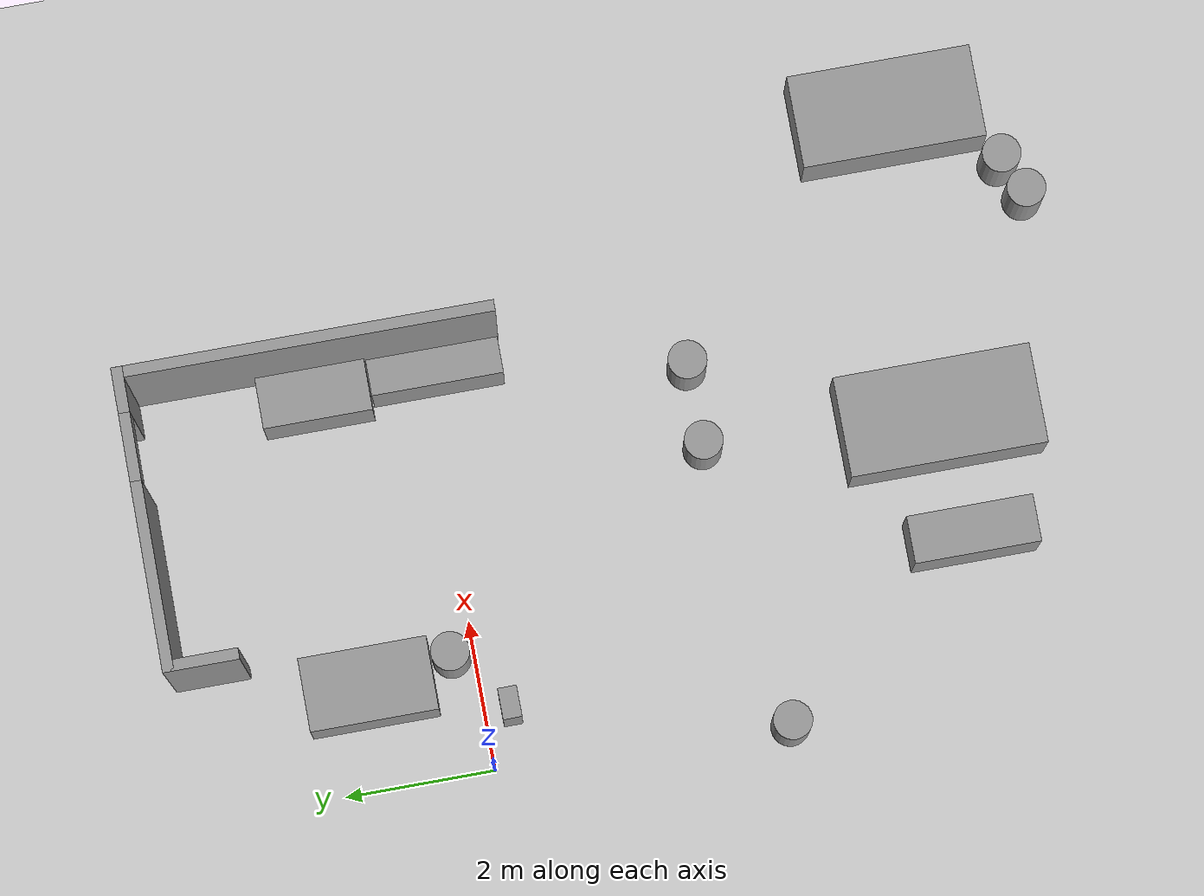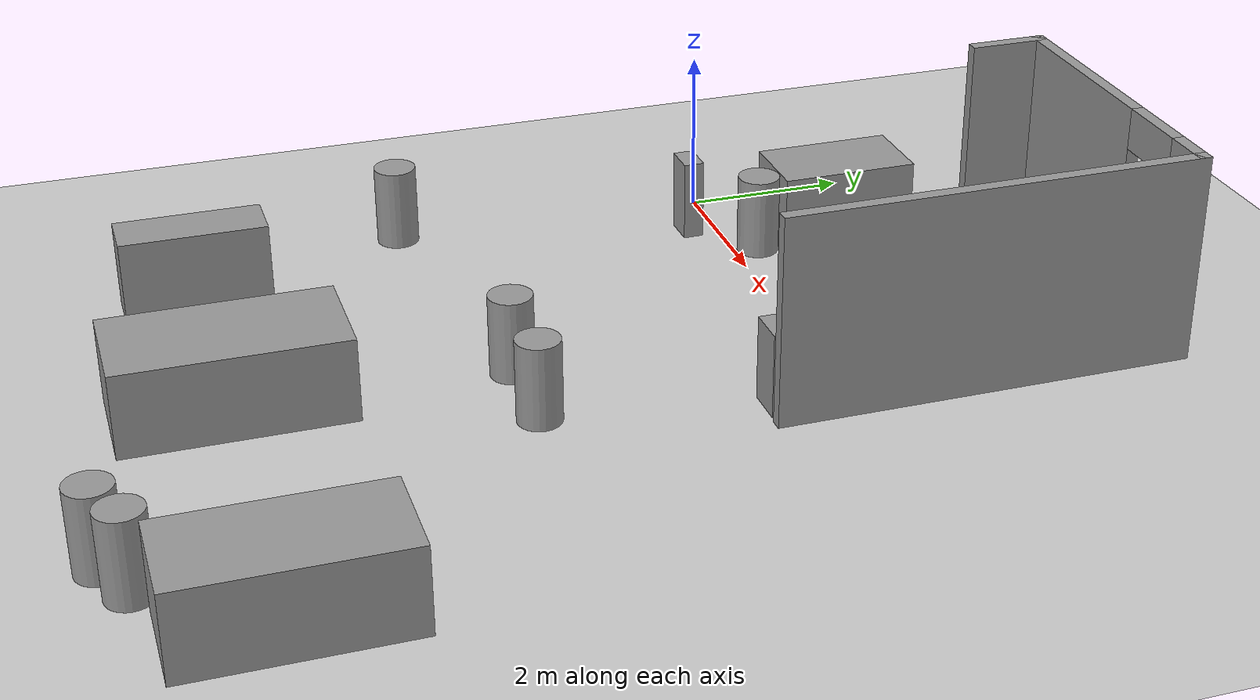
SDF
<sdf version="1.6">
 <world name="default">
  <model name="ground_plane">
   <static>1</static>
   <link name="link">
    <collision name="collision">
     <geometry><plane><normal>0 0 1</normal><size>100 100</size></plane></geometry>
     <surface><friction><ode><mu>100</mu><mu2>50</mu2></ode></friction></surface>
    </collision>
    <visual name="visual">
     <cast_shadows>0</cast_shadows>
     <geometry><plane><normal>0 0 1</normal><size>100 100</size></plane></geometry>
     <material>
      <script><uri>file://media/materials/scripts/gazebo.material</uri><name>Gazebo/Grey</name></script>
     </material>
    </visual>
   </link>
  </model>
  <model name="cma_L5">
   <pose>3.77502 1.45512 0 0 -0 0</pose>
   <link name="Wall_0">
    <collision name="Wall_0_Collision">
     <geometry><box><size>1 0.15 2.5</size></box></geometry>
     <pose>0 0 1.25 0 -0 0</pose>
    </collision>
    <visual name="Wall_0_Visual">
     <pose>0 0 1.25 0 -0 0</pose>
     <geometry><box><size>1 0.15 2.5</size></box></geometry>
     <material>
      <script><uri>file://media/materials/scripts/gazebo.material</uri><name>Gazebo/Grey</name></script>
      <ambient>1 1 1 1</ambient>
     </material>
    </visual>
    <pose>-1.925 2 0 0 -0 1.5708</pose>
   </link>
   <link name="Wall_1">
    <pose>0 2.425 0 0 -0 0</pose>
    <visual name="Wall_1_Visual_0">
     <pose>-0.7525 0 1.25 0 -0 0</pose>
     <geometry><box><size>2.495 0.15 2.5</size></box></geometry>
     <material>
      <script><uri>file://media/materials/scripts/gazebo.material</uri><name>Gazebo/Grey</name></script>
      <ambient>1 1 1 1</ambient>
     </material>
    </visual>
    <collision name="Wall_1_Collision_0">
     <geometry><box><size>2.495 0.15 2.5</size></box></geometry>
     <pose>-0.7525 0 1.25 0 -0 0</pose>
    </collision>
    <visual name="Wall_1_Visual_1">
     <pose>1.6975 0 1.25 0 -0 0</pose>
     <geometry><box><size>0.605 0.15 2.5</size></box></geometry>
     <material>
      <script><uri>file://media/materials/scripts/gazebo.material</uri><name>Gazebo/Grey</name></script>
      <ambient>1 1 1 1</ambient>
     </material>
    </visual>
    <collision name="Wall_1_Collision_1">
     <geometry><box><size>0.605 0.15 2.5</size></box></geometry>
     <pose>1.6975 0 1.25 0 -0 0</pose>
    </collision>
    <visual name="Wall_1_Visual_2">
     <pose>0.945 0 2.25 0 -0 0</pose>
     <geometry><box><size>0.9 0.15 0.5</size></box></geometry>
     <material>
      <script><uri>file://media/materials/scripts/gazebo.material</uri><name>Gazebo/Grey</name></script>
      <ambient>1 1 1 1</ambient>
     </material>
    </visual>
    <collision name="Wall_1_Collision_2">
     <geometry><box><size>0.9 0.15 0.5</size></box></geometry>
     <pose>0.945 0 2.25 0 -0 0</pose>
    </collision>
   </link>
   <link name="Wall_3">
    <collision name="Wall_3_Collision">
     <geometry><box><size>5 0.15 2.5</size></box></geometry>
     <pose>0 0 1.25 0 -0 0</pose>
    </collision>
    <visual name="Wall_3_Visual">
     <pose>0 0 1.25 0 -0 0</pose>
     <geometry><box><size>5 0.15 2.5</size></box></geometry>
     <material>
      <script><uri>file://media/materials/scripts/gazebo.material</uri><name>Gazebo/Grey</name></script>
      <ambient>1 1 1 1</ambient>
     </material>
    </visual>
    <pose>1.925 0 0 0 0 -1.5708</pose>
   </link>
   <static>1</static>
  </model>
  <model name="cma_picador_0">
   <link name="link_2">
    <pose>-0.7258 -1.69104 0 0 -0 0</pose>
    <inertial>
     <mass>0.104732</mass>
     <inertia>
      <ixx>0.00927906</ixx>
      <ixy>0</ixy>
      <ixz>0</ixz>
      <iyy>0.010243</iyy>
      <iyz>0</iyz>
      <izz>0.00206672</izz>
     </inertia>
    </inertial>
    <visual name="visual">
     <geometry><box><size>0.416688 0.25134 1</size></box></geometry>
     <material>
      <lighting>1</lighting>
      <script><uri>file://media/materials/scripts/gazebo.material</uri><name>Gazebo/Grey</name></script>
      <ambient>0.3 0.3 0.3 1</ambient>
      <diffuse>0.7 0.7 0.7 1</diffuse>
      <specular>0.01 0.01 0.01 1</specular>
      <emissive>0 0 0 1</emissive>
     </material>
    </visual>
    <collision name="collision">
     <geometry><box><size>0.416688 0.25134 1</size></box></geometry>
     <surface>
      <friction>
       <ode><mu>1</mu><mu2>1</mu2><fdir1>0 0 0</fdir1><slip1>0</slip1><slip2>0</slip2></ode>
       <torsional>
        <coefficient>1</coefficient>
        <patch_radius>0</patch_radius>
        <surface_radius>0</surface_radius>
        <use_patch_radius>1</use_patch_radius>
        <ode><slip>0</slip></ode>
       </torsional>
      </friction>
      <bounce><restitution_coefficient>0</restitution_coefficient><threshold>1e+06</threshold></bounce>
      <contact>
       <collide_without_contact>0</collide_without_contact>
       <collide_without_contact_bitmask>1</collide_without_contact_bitmask>
       <collide_bitmask>1</collide_bitmask>
       <ode>
        <soft_cfm>0</soft_cfm>
        <soft_erp>0.2</soft_erp>
        <kp>1e+13</kp>
        <kd>1</kd>
        <max_vel>0.01</max_vel>
        <min_depth>0</min_depth>
       </ode>
       <bullet>
        <split_impulse>1</split_impulse>
        <split_impulse_penetration_threshold>-0.01</split_impulse_penetration_threshold>
        <soft_cfm>0</soft_cfm>
        <soft_erp>0.2</soft_erp>
        <kp>1e+13</kp>
        <kd>1</kd>
       </bullet>
      </contact>
     </surface>
    </collision>
   </link>
   <static>0</static>
   <pose>1.47185 1.35996 0.500001 1e-06 2e-06 0.009082</pose>
  </model>
  <model name="cma_cesto">
   <link name="link_1">
    <pose>-0.329659 -1.55494 0 0 -0 0</pose>
    <inertial>
     <mass>0.267897</mass>
     <inertia>
      <ixx>0.0268102</ixx>
      <ixy>0</ixy>
      <ixz>0</ixz>
      <iyy>0.0268102</iyy>
      <iyz>0</iyz>
      <izz>0.00897111</izz>
     </inertia>
    </inertial>
    <visual name="visual">
     <geometry><cylinder><radius>0.258792</radius><length>1</length></cylinder></geometry>
     <material>
      <lighting>1</lighting>
      <script><uri>file://media/materials/scripts/gazebo.material</uri><name>Gazebo/Grey</name></script>
      <ambient>0.3 0.3 0.3 1</ambient>
      <diffuse>0.7 0.7 0.7 1</diffuse>
      <specular>0.01 0.01 0.01 1</specular>
      <emissive>0 0 0 1</emissive>
     </material>
    </visual>
    <collision name="collision">
     <geometry><cylinder><radius>0.258792</radius><length>1</length></cylinder></geometry>
     <surface>
      <friction>
       <ode><mu>1</mu><mu2>1</mu2><fdir1>0 0 0</fdir1><slip1>0</slip1><slip2>0</slip2></ode>
       <torsional>
        <coefficient>1</coefficient>
        <patch_radius>0</patch_radius>
        <surface_radius>0</surface_radius>
        <use_patch_radius>1</use_patch_radius>
        <ode><slip>0</slip></ode>
       </torsional>
      </friction>
      <bounce><restitution_coefficient>0</restitution_coefficient><threshold>1e+06</threshold></bounce>
      <contact>
       <collide_without_contact>0</collide_without_contact>
       <collide_without_contact_bitmask>1</collide_without_contact_bitmask>
       <collide_bitmask>1</collide_bitmask>
       <ode>
        <soft_cfm>0</soft_cfm>
        <soft_erp>0.2</soft_erp>
        <kp>1e+13</kp>
        <kd>1</kd>
        <max_vel>0.01</max_vel>
        <min_depth>0</min_depth>
       </ode>
       <bullet>
        <split_impulse>1</split_impulse>
        <split_impulse_penetration_threshold>-0.01</split_impulse_penetration_threshold>
        <soft_cfm>0</soft_cfm>
        <soft_erp>0.2</soft_erp>
        <kp>1e+13</kp>
        <kd>1</kd>
       </bullet>
      </contact>
     </surface>
    </collision>
   </link>
   <static>0</static>
   <pose>1.91097 1.85863 0.499992 0 0 -0.013205</pose>
  </model>
  <model name="cma_sofa_2_lugares">
   <link name="link_0">
    <pose>-0.034013 -0.039828 0 0 -0 0</pose>
    <inertial>
     <mass>1.66071</mass>
     <inertia>
      <ixx>0.538183</ixx>
      <ixy>0</ixy>
      <ixz>0</ixz>
      <iyy>0.270519</iyy>
      <iyz>0</iyz>
      <izz>0.531915</izz>
     </inertia>
    </inertial>
    <visual name="visual">
     <geometry><box><size>0.977147 1.69968 1</size></box></geometry>
     <material>
      <lighting>1</lighting>
      <script><uri>file://media/materials/scripts/gazebo.material</uri><name>Gazebo/Grey</name></script>
      <ambient>0.3 0.3 0.3 1</ambient>
      <diffuse>0.7 0.7 0.7 1</diffuse>
      <specular>0.01 0.01 0.01 1</specular>
      <emissive>0 0 0 1</emissive>
     </material>
    </visual>
    <collision name="collision">
     <geometry><box><size>0.977147 1.69968 1</size></box></geometry>
     <surface>
      <friction>
       <ode><mu>1</mu><mu2>1</mu2><fdir1>0 0 0</fdir1><slip1>0</slip1><slip2>0</slip2></ode>
       <torsional>
        <coefficient>1</coefficient>
        <patch_radius>0</patch_radius>
        <surface_radius>0</surface_radius>
        <use_patch_radius>1</use_patch_radius>
        <ode><slip>0</slip></ode>
       </torsional>
      </friction>
      <bounce><restitution_coefficient>0</restitution_coefficient><threshold>1e+06</threshold></bounce>
      <contact>
       <collide_without_contact>0</collide_without_contact>
       <collide_without_contact_bitmask>1</collide_without_contact_bitmask>
       <collide_bitmask>1</collide_bitmask>
       <ode>
        <soft_cfm>0</soft_cfm>
        <soft_erp>0.2</soft_erp>
        <kp>1e+13</kp>
        <kd>1</kd>
        <max_vel>0.01</max_vel>
        <min_depth>0</min_depth>
       </ode>
       <bullet>
        <split_impulse>1</split_impulse>
        <split_impulse_penetration_threshold>-0.01</split_impulse_penetration_threshold>
        <soft_cfm>0</soft_cfm>
        <soft_erp>0.2</soft_erp>
        <kp>1e+13</kp>
        <kd>1</kd>
       </bullet>
      </contact>
     </surface>
    </collision>
   </link>
   <static>0</static>
   <pose>1.36448 1.47296 0.499999 -0 -2e-06 9.6e-05</pose>
  </model>
  <model name="cma_sofa_ch2">
   <link name="link_0">
    <pose>7.54152 -9.06061 0.5 0 -0 0</pose>
    <inertial>
     <mass>3.05287</mass>
     <inertia><ixx>1.79053</ixx><ixy>0</ixy><ixz>0</ixz><iyy>0.647089</iyy><iyz>0</iyz><izz>1.92881</izz></inertia>
    </inertial>
    <visual name="visual">
     <geometry><box><size>1.24235 2.45729 1</size></box></geometry>
     <material>
      <lighting>1</lighting>
      <script><uri>file://media/materials/scripts/gazebo.material</uri><name>Gazebo/Grey</name></script>
      <ambient>0.3 0.3 0.3 1</ambient>
      <diffuse>0.7 0.7 0.7 1</diffuse>
      <specular>0.01 0.01 0.01 1</specular>
      <emissive>0 0 0 1</emissive>
     </material>
    </visual>
    <collision name="collision">
     <geometry><box><size>1.24235 2.45729 1</size></box></geometry>
     <surface>
      <friction>
       <ode><mu>1</mu><mu2>1</mu2><fdir1>0 0 0</fdir1><slip1>0</slip1><slip2>0</slip2></ode>
       <torsional>
        <coefficient>1</coefficient>
        <patch_radius>0</patch_radius>
        <surface_radius>0</surface_radius>
        <use_patch_radius>1</use_patch_radius>
        <ode><slip>0</slip></ode>
       </torsional>
      </friction>
      <bounce><restitution_coefficient>0</restitution_coefficient><threshold>1e+06</threshold></bounce>
      <contact>
       <collide_without_contact>0</collide_without_contact>
       <collide_without_contact_bitmask>1</collide_without_contact_bitmask>
       <collide_bitmask>1</collide_bitmask>
       <ode>
        <soft_cfm>0</soft_cfm>
        <soft_erp>0.2</soft_erp>
        <kp>1e+13</kp>
        <kd>1</kd>
        <max_vel>0.01</max_vel>
        <min_depth>0</min_depth>
       </ode>
       <bullet>
        <split_impulse>1</split_impulse>
        <split_impulse_penetration_threshold>-0.01</split_impulse_penetration_threshold>
        <soft_cfm>0</soft_cfm>
        <soft_erp>0.2</soft_erp>
        <kp>1e+13</kp>
        <kd>1</kd>
       </bullet>
      </contact>
     </surface>
    </collision>
   </link>
   <model name="cma_armarioL">
    <link name="link_0">
     <pose>3.66226 -6.16735 0.5 0 -0 0</pose>
     <inertial>
      <mass>1.04821</mass>
      <inertia>
       <ixx>0.330873</ixx>
       <ixy>0</ixy>
       <ixz>0</ixz>
       <iyy>0.121777</iyy>
       <iyz>0</iyz>
       <izz>0.277949</izz>
      </inertia>
     </inertial>
     <visual name="visual">
      <geometry><box><size>0.627792 1.66972 1</size></box></geometry>
      <material>
       <lighting>1</lighting>
       <script><uri>file://media/materials/scripts/gazebo.material</uri><name>Gazebo/Grey</name></script>
       <ambient>0.3 0.3 0.3 1</ambient>
       <diffuse>0.7 0.7 0.7 1</diffuse>
       <specular>0.01 0.01 0.01 1</specular>
       <emissive>0 0 0 1</emissive>
      </material>
     </visual>
     <collision name="collision">
      <geometry><box><size>0.627792 1.66972 1</size></box></geometry>
      <surface>
       <friction>
        <ode><mu>1</mu><mu2>1</mu2><fdir1>0 0 0</fdir1><slip1>0</slip1><slip2>0</slip2></ode>
        <torsional>
         <coefficient>1</coefficient>
         <patch_radius>0</patch_radius>
         <surface_radius>0</surface_radius>
         <use_patch_radius>1</use_patch_radius>
         <ode><slip>0</slip></ode>
        </torsional>
       </friction>
       <bounce><restitution_coefficient>0</restitution_coefficient><threshold>1e+06</threshold></bounce>
       <contact>
        <collide_without_contact>0</collide_without_contact>
        <collide_without_contact_bitmask>1</collide_without_contact_bitmask>
        <collide_bitmask>1</collide_bitmask>
        <ode>
         <soft_cfm>0</soft_cfm>
         <soft_erp>0.2</soft_erp>
         <kp>1e+13</kp>
         <kd>1</kd>
         <max_vel>0.01</max_vel>
         <min_depth>0</min_depth>
        </ode>
        <bullet>
         <split_impulse>1</split_impulse>
         <split_impulse_penetration_threshold>-0.01</split_impulse_penetration_threshold>
         <soft_cfm>0</soft_cfm>
         <soft_erp>0.2</soft_erp>
         <kp>1e+13</kp>
         <kd>1</kd>
        </bullet>
       </contact>
      </surface>
     </collision>
    </link>
    <static>0</static>
    <pose>-1.91803 -2.92011 0.5 0 -0 0</pose>
   </model>
   <model name="cma_cesto">
    <link name="link_1">
     <pose>-0.329659 -1.55494 0 0 -0 0</pose>
     <inertial>
      <mass>0.267897</mass>
      <inertia>
       <ixx>0.0268102</ixx>
       <ixy>0</ixy>
       <ixz>0</ixz>
       <iyy>0.0268102</iyy>
       <iyz>0</iyz>
       <izz>0.00897111</izz>
      </inertia>
     </inertial>
     <visual name="visual">
      <geometry><cylinder><radius>0.258792</radius><length>1</length></cylinder></geometry>
      <material>
       <lighting>1</lighting>
       <script><uri>file://media/materials/scripts/gazebo.material</uri><name>Gazebo/Grey</name></script>
       <ambient>0.3 0.3 0.3 1</ambient>
       <diffuse>0.7 0.7 0.7 1</diffuse>
       <specular>0.01 0.01 0.01 1</specular>
       <emissive>0 0 0 1</emissive>
      </material>
     </visual>
     <collision name="collision">
      <geometry><cylinder><radius>0.258792</radius><length>1</length></cylinder></geometry>
      <surface>
       <friction>
        <ode><mu>1</mu><mu2>1</mu2><fdir1>0 0 0</fdir1><slip1>0</slip1><slip2>0</slip2></ode>
        <torsional>
         <coefficient>1</coefficient>
         <patch_radius>0</patch_radius>
         <surface_radius>0</surface_radius>
         <use_patch_radius>1</use_patch_radius>
         <ode><slip>0</slip></ode>
        </torsional>
       </friction>
       <bounce><restitution_coefficient>0</restitution_coefficient><threshold>1e+06</threshold></bounce>
       <contact>
        <collide_without_contact>0</collide_without_contact>
        <collide_without_contact_bitmask>1</collide_without_contact_bitmask>
        <collide_bitmask>1</collide_bitmask>
        <ode>
         <soft_cfm>0</soft_cfm>
         <soft_erp>0.2</soft_erp>
         <kp>1e+13</kp>
         <kd>1</kd>
         <max_vel>0.01</max_vel>
         <min_depth>0</min_depth>
        </ode>
        <bullet>
         <split_impulse>1</split_impulse>
         <split_impulse_penetration_threshold>-0.01</split_impulse_penetration_threshold>
         <soft_cfm>0</soft_cfm>
         <soft_erp>0.2</soft_erp>
         <kp>1e+13</kp>
         <kd>1</kd>
        </bullet>
       </contact>
      </surface>
     </collision>
    </link>
    <static>0</static>
    <pose>6.97935 -8.88509 0.5 0 -0 0</pose>
   </model>
   <model name="cma_cesto_0">
    <link name="link_1">
     <pose>-0.329659 -1.55494 0 0 -0 0</pose>
     <inertial>
      <mass>0.267897</mass>
      <inertia>
       <ixx>0.0268102</ixx>
       <ixy>0</ixy>
       <ixz>0</ixz>
       <iyy>0.0268102</iyy>
       <iyz>0</iyz>
       <izz>0.00897111</izz>
      </inertia>
     </inertial>
     <visual name="visual">
      <geometry><cylinder><radius>0.258792</radius><length>1</length></cylinder></geometry>
      <material>
       <lighting>1</lighting>
       <script><uri>file://media/materials/scripts/gazebo.material</uri><name>Gazebo/Grey</name></script>
       <ambient>0.3 0.3 0.3 1</ambient>
       <diffuse>0.7 0.7 0.7 1</diffuse>
       <specular>0.01 0.01 0.01 1</specular>
       <emissive>0 0 0 1</emissive>
      </material>
     </visual>
     <collision name="collision">
      <geometry><cylinder><radius>0.258792</radius><length>1</length></cylinder></geometry>
      <surface>
       <friction>
        <ode><mu>1</mu><mu2>1</mu2><fdir1>0 0 0</fdir1><slip1>0</slip1><slip2>0</slip2></ode>
        <torsional>
         <coefficient>1</coefficient>
         <patch_radius>0</patch_radius>
         <surface_radius>0</surface_radius>
         <use_patch_radius>1</use_patch_radius>
         <ode><slip>0</slip></ode>
        </torsional>
       </friction>
       <bounce><restitution_coefficient>0</restitution_coefficient><threshold>1e+06</threshold></bounce>
       <contact>
        <collide_without_contact>0</collide_without_contact>
        <collide_without_contact_bitmask>1</collide_without_contact_bitmask>
        <collide_bitmask>1</collide_bitmask>
        <ode>
         <soft_cfm>0</soft_cfm>
         <soft_erp>0.2</soft_erp>
         <kp>1e+13</kp>
         <kd>1</kd>
         <max_vel>0.01</max_vel>
         <min_depth>0</min_depth>
        </ode>
        <bullet>
         <split_impulse>1</split_impulse>
         <split_impulse_penetration_threshold>-0.01</split_impulse_penetration_threshold>
         <soft_cfm>0</soft_cfm>
         <soft_erp>0.2</soft_erp>
         <kp>1e+13</kp>
         <kd>1</kd>
        </bullet>
       </contact>
      </surface>
     </collision>
    </link>
    <static>0</static>
    <pose>6.4663 -9.11922 0.5 0 -0 0</pose>
   </model>
   <model name="cma_cesto_1">
    <link name="link_1">
     <pose>-0.329659 -1.55494 0 0 -0 0</pose>
     <inertial>
      <mass>0.267897</mass>
      <inertia>
       <ixx>0.0268102</ixx>
       <ixy>0</ixy>
       <ixz>0</ixz>
       <iyy>0.0268102</iyy>
       <iyz>0</iyz>
       <izz>0.00897111</izz>
      </inertia>
     </inertial>
     <visual name="visual">
      <geometry><cylinder><radius>0.258792</radius><length>1</length></cylinder></geometry>
      <material>
       <lighting>1</lighting>
       <script><uri>file://media/materials/scripts/gazebo.material</uri><name>Gazebo/Grey</name></script>
       <ambient>0.3 0.3 0.3 1</ambient>
       <diffuse>0.7 0.7 0.7 1</diffuse>
       <specular>0.01 0.01 0.01 1</specular>
       <emissive>0 0 0 1</emissive>
      </material>
     </visual>
     <collision name="collision">
      <geometry><cylinder><radius>0.258792</radius><length>1</length></cylinder></geometry>
      <surface>
       <friction>
        <ode><mu>1</mu><mu2>1</mu2><fdir1>0 0 0</fdir1><slip1>0</slip1><slip2>0</slip2></ode>
        <torsional>
         <coefficient>1</coefficient>
         <patch_radius>0</patch_radius>
         <surface_radius>0</surface_radius>
         <use_patch_radius>1</use_patch_radius>
         <ode><slip>0</slip></ode>
        </torsional>
       </friction>
       <bounce><restitution_coefficient>0</restitution_coefficient><threshold>1e+06</threshold></bounce>
       <contact>
        <collide_without_contact>0</collide_without_contact>
        <collide_without_contact_bitmask>1</collide_without_contact_bitmask>
        <collide_bitmask>1</collide_bitmask>
        <ode>
         <soft_cfm>0</soft_cfm>
         <soft_erp>0.2</soft_erp>
         <kp>1e+13</kp>
         <kd>1</kd>
         <max_vel>0.01</max_vel>
         <min_depth>0</min_depth>
        </ode>
        <bullet>
         <split_impulse>1</split_impulse>
         <split_impulse_penetration_threshold>-0.01</split_impulse_penetration_threshold>
         <soft_cfm>0</soft_cfm>
         <soft_erp>0.2</soft_erp>
         <kp>1e+13</kp>
         <kd>1</kd>
        </bullet>
       </contact>
      </surface>
     </collision>
    </link>
    <static>0</static>
    <pose>0.091229 -4.78918 0.5 0 -0 0</pose>
   </model>
   <model name="cma_cesto_2">
    <link name="link_1">
     <pose>-0.329659 -1.55494 0 0 -0 0</pose>
     <inertial>
      <mass>0.267897</mass>
      <inertia>
       <ixx>0.0268102</ixx>
       <ixy>0</ixy>
       <ixz>0</ixz>
       <iyy>0.0268102</iyy>
       <iyz>0</iyz>
       <izz>0.00897111</izz>
      </inertia>
     </inertial>
     <visual name="visual">
      <geometry><cylinder><radius>0.258792</radius><length>1</length></cylinder></geometry>
      <material>
       <lighting>1</lighting>
       <script><uri>file://media/materials/scripts/gazebo.material</uri><name>Gazebo/Grey</name></script>
       <ambient>0.3 0.3 0.3 1</ambient>
       <diffuse>0.7 0.7 0.7 1</diffuse>
       <specular>0.01 0.01 0.01 1</specular>
       <emissive>0 0 0 1</emissive>
      </material>
     </visual>
     <collision name="collision">
      <geometry><cylinder><radius>0.258792</radius><length>1</length></cylinder></geometry>
      <surface>
       <friction>
        <ode><mu>1</mu><mu2>1</mu2><fdir1>0 0 0</fdir1><slip1>0</slip1><slip2>0</slip2></ode>
        <torsional>
         <coefficient>1</coefficient>
         <patch_radius>0</patch_radius>
         <surface_radius>0</surface_radius>
         <use_patch_radius>1</use_patch_radius>
         <ode><slip>0</slip></ode>
        </torsional>
       </friction>
       <bounce><restitution_coefficient>0</restitution_coefficient><threshold>1e+06</threshold></bounce>
       <contact>
        <collide_without_contact>0</collide_without_contact>
        <collide_without_contact_bitmask>1</collide_without_contact_bitmask>
        <collide_bitmask>1</collide_bitmask>
        <ode>
         <soft_cfm>0</soft_cfm>
         <soft_erp>0.2</soft_erp>
         <kp>1e+13</kp>
         <kd>1</kd>
         <max_vel>0.01</max_vel>
         <min_depth>0</min_depth>
        </ode>
        <bullet>
         <split_impulse>1</split_impulse>
         <split_impulse_penetration_threshold>-0.01</split_impulse_penetration_threshold>
         <soft_cfm>0</soft_cfm>
         <soft_erp>0.2</soft_erp>
         <kp>1e+13</kp>
         <kd>1</kd>
        </bullet>
       </contact>
      </surface>
     </collision>
    </link>
    <static>0</static>
    <pose>5.00434 -4.30015 0.5 0 -0 0</pose>
   </model>
   <model name="cma_cesto_3">
    <link name="link_1">
     <pose>-0.329659 -1.55494 0 0 -0 0</pose>
     <inertial>
      <mass>0.267897</mass>
      <inertia>
       <ixx>0.0268102</ixx>
       <ixy>0</ixy>
       <ixz>0</ixz>
       <iyy>0.0268102</iyy>
       <iyz>0</iyz>
       <izz>0.00897111</izz>
      </inertia>
     </inertial>
     <visual name="visual">
      <geometry><cylinder><radius>0.258792</radius><length>1</length></cylinder></geometry>
      <material>
       <lighting>1</lighting>
       <script><uri>file://media/materials/scripts/gazebo.material</uri><name>Gazebo/Grey</name></script>
       <ambient>0.3 0.3 0.3 1</ambient>
       <diffuse>0.7 0.7 0.7 1</diffuse>
       <specular>0.01 0.01 0.01 1</specular>
       <emissive>0 0 0 1</emissive>
      </material>
     </visual>
     <collision name="collision">
      <geometry><cylinder><radius>0.258792</radius><length>1</length></cylinder></geometry>
      <surface>
       <friction>
        <ode><mu>1</mu><mu2>1</mu2><fdir1>0 0 0</fdir1><slip1>0</slip1><slip2>0</slip2></ode>
        <torsional>
         <coefficient>1</coefficient>
         <patch_radius>0</patch_radius>
         <surface_radius>0</surface_radius>
         <use_patch_radius>1</use_patch_radius>
         <ode><slip>0</slip></ode>
        </torsional>
       </friction>
       <bounce><restitution_coefficient>0</restitution_coefficient><threshold>1e+06</threshold></bounce>
       <contact>
        <collide_without_contact>0</collide_without_contact>
        <collide_without_contact_bitmask>1</collide_without_contact_bitmask>
        <collide_bitmask>1</collide_bitmask>
        <ode>
         <soft_cfm>0</soft_cfm>
         <soft_erp>0.2</soft_erp>
         <kp>1e+13</kp>
         <kd>1</kd>
         <max_vel>0.01</max_vel>
         <min_depth>0</min_depth>
        </ode>
        <bullet>
         <split_impulse>1</split_impulse>
         <split_impulse_penetration_threshold>-0.01</split_impulse_penetration_threshold>
         <soft_cfm>0</soft_cfm>
         <soft_erp>0.2</soft_erp>
         <kp>1e+13</kp>
         <kd>1</kd>
        </bullet>
       </contact>
      </surface>
     </collision>
    </link>
    <static>0</static>
    <pose>3.91768 -4.3154 0.5 0 -0 0</pose>
   </model>
   <model name="cma_sofa_ch1">
    <link name="link_0">
     <pose>-4e-06 5e-06 0 0 -0 0</pose>
     <inertial>
      <mass>3.51192</mass>
      <inertia><ixx>2.30831</ixx><ixy>0</ixy><ixz>0</ixz><iyy>0.816746</iyy><iyz>0</iyz><izz>2.53974</izz></inertia>
     </inertial>
     <visual name="visual">
      <geometry><box><size>1.33823 2.62439 1</size></box></geometry>
      <material>
       <lighting>1</lighting>
       <script><uri>file://media/materials/scripts/gazebo.material</uri><name>Gazebo/Grey</name></script>
       <ambient>0.3 0.3 0.3 1</ambient>
       <diffuse>0.7 0.7 0.7 1</diffuse>
       <specular>0.01 0.01 0.01 1</specular>
       <emissive>0 0 0 1</emissive>
      </material>
     </visual>
     <collision name="collision">
      <geometry><box><size>1.33823 2.62439 1</size></box></geometry>
      <surface>
       <friction>
        <ode><mu>1</mu><mu2>1</mu2><fdir1>0 0 0</fdir1><slip1>0</slip1><slip2>0</slip2></ode>
        <torsional>
         <coefficient>1</coefficient>
         <patch_radius>0</patch_radius>
         <surface_radius>0</surface_radius>
         <use_patch_radius>1</use_patch_radius>
         <ode><slip>0</slip></ode>
        </torsional>
       </friction>
       <bounce><restitution_coefficient>0</restitution_coefficient><threshold>1e+06</threshold></bounce>
       <contact>
        <collide_without_contact>0</collide_without_contact>
        <collide_without_contact_bitmask>1</collide_without_contact_bitmask>
        <collide_bitmask>1</collide_bitmask>
        <ode>
         <soft_cfm>0</soft_cfm>
         <soft_erp>0.2</soft_erp>
         <kp>1e+13</kp>
         <kd>1</kd>
         <max_vel>0.01</max_vel>
         <min_depth>0</min_depth>
        </ode>
        <bullet>
         <split_impulse>1</split_impulse>
         <split_impulse_penetration_threshold>-0.01</split_impulse_penetration_threshold>
         <soft_cfm>0</soft_cfm>
         <soft_erp>0.2</soft_erp>
         <kp>1e+13</kp>
         <kd>1</kd>
        </bullet>
       </contact>
      </surface>
     </collision>
    </link>
    <static>0</static>
    <pose>3.4236 -8.99816 0.5 0 -0 0</pose>
   </model>
   <static>0</static>
   <pose>0.11721 2.42164 0 0 -0 0</pose>
  </model>
  <model name="cma_geladeira">
   <link name="link_2">
    <pose>3e-06 -4e-06 0 0 -0 0</pose>
    <inertial>
     <mass>0.994085</mass>
     <inertia>
      <ixx>0.258405</ixx>
      <ixy>0</ixy>
      <ixz>0</ixz>
      <iyy>0.121468</iyy>
      <iyz>0</iyz>
      <izz>0.214192</izz>
     </inertia>
    </inertial>
    <visual name="visual">
     <geometry><box><size>0.682844 1.45579 1</size></box></geometry>
     <material>
      <lighting>1</lighting>
      <script><uri>file://media/materials/scripts/gazebo.material</uri><name>Gazebo/Grey</name></script>
      <ambient>0.3 0.3 0.3 1</ambient>
      <diffuse>0.7 0.7 0.7 1</diffuse>
      <specular>0.01 0.01 0.01 1</specular>
      <emissive>0 0 0 1</emissive>
     </material>
    </visual>
    <collision name="collision">
     <geometry><box><size>0.682844 1.45579 1</size></box></geometry>
     <surface>
      <friction>
       <ode><mu>1</mu><mu2>1</mu2><fdir1>0 0 0</fdir1><slip1>0</slip1><slip2>0</slip2></ode>
       <torsional>
        <coefficient>1</coefficient>
        <patch_radius>0</patch_radius>
        <surface_radius>0</surface_radius>
        <use_patch_radius>1</use_patch_radius>
        <ode><slip>0</slip></ode>
       </torsional>
      </friction>
      <bounce><restitution_coefficient>0</restitution_coefficient><threshold>1e+06</threshold></bounce>
      <contact>
       <collide_without_contact>0</collide_without_contact>
       <collide_without_contact_bitmask>1</collide_without_contact_bitmask>
       <collide_bitmask>1</collide_bitmask>
       <ode>
        <soft_cfm>0</soft_cfm>
        <soft_erp>0.2</soft_erp>
        <kp>1e+13</kp>
        <kd>1</kd>
        <max_vel>0.01</max_vel>
        <min_depth>0</min_depth>
       </ode>
       <bullet>
        <split_impulse>1</split_impulse>
        <split_impulse_penetration_threshold>-0.01</split_impulse_penetration_threshold>
        <soft_cfm>0</soft_cfm>
        <soft_erp>0.2</soft_erp>
        <kp>1e+13</kp>
        <kd>1</kd>
       </bullet>
      </contact>
     </surface>
    </collision>
   </link>
   <static>0</static>
   <pose>5.2196 1.47716 0.499997 0 9e-06 -2.4e-05</pose>
  </model>
  <model name="cma_armario_coz_190x40cm">
   <link name="link_3">
    <pose>-3e-06 1e-06 0 0 -0 0</pose>
    <inertial>
     <mass>0.848618</mass>
     <inertia>
      <ixx>0.28876</ixx>
      <ixy>0</ixy>
      <ixz>0</ixz>
      <iyy>0.0872359</iyy>
      <iyz>0</iyz>
      <izz>0.234559</izz>
     </inertia>
    </inertial>
    <visual name="visual">
     <geometry><box><size>0.483301 1.75592 1</size></box></geometry>
     <material>
      <lighting>1</lighting>
      <script><uri>file://media/materials/scripts/gazebo.material</uri><name>Gazebo/Grey</name></script>
      <ambient>0.3 0.3 0.3 1</ambient>
      <diffuse>0.7 0.7 0.7 1</diffuse>
      <specular>0.01 0.01 0.01 1</specular>
      <emissive>0 0 0 1</emissive>
     </material>
    </visual>
    <collision name="collision">
     <geometry><box><size>0.483301 1.75592 1</size></box></geometry>
     <surface>
      <friction>
       <ode><mu>1</mu><mu2>1</mu2><fdir1>0 0 0</fdir1><slip1>0</slip1><slip2>0</slip2></ode>
       <torsional>
        <coefficient>1</coefficient>
        <patch_radius>0</patch_radius>
        <surface_radius>0</surface_radius>
        <use_patch_radius>1</use_patch_radius>
        <ode><slip>0</slip></ode>
       </torsional>
      </friction>
      <bounce><restitution_coefficient>0</restitution_coefficient><threshold>1e+06</threshold></bounce>
      <contact>
       <collide_without_contact>0</collide_without_contact>
       <collide_without_contact_bitmask>1</collide_without_contact_bitmask>
       <collide_bitmask>1</collide_bitmask>
       <ode>
        <soft_cfm>0</soft_cfm>
        <soft_erp>0.2</soft_erp>
        <kp>1e+13</kp>
        <kd>1</kd>
        <max_vel>0.01</max_vel>
        <min_depth>0</min_depth>
       </ode>
       <bullet>
        <split_impulse>1</split_impulse>
        <split_impulse_penetration_threshold>-0.01</split_impulse_penetration_threshold>
        <soft_cfm>0</soft_cfm>
        <soft_erp>0.2</soft_erp>
        <kp>1e+13</kp>
        <kd>1</kd>
       </bullet>
      </contact>
     </surface>
    </collision>
   </link>
   <static>0</static>
   <pose>5.29765 -0.147719 0.5 0 0 -0.000229</pose>
  </model>
 </world>
</sdf>
